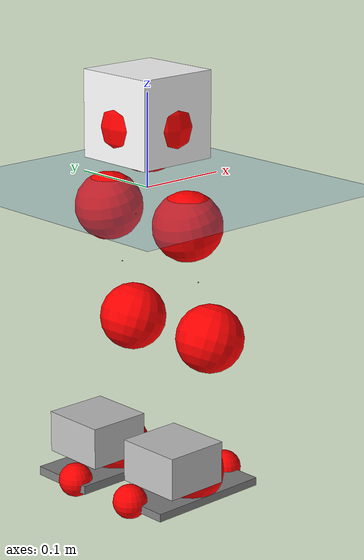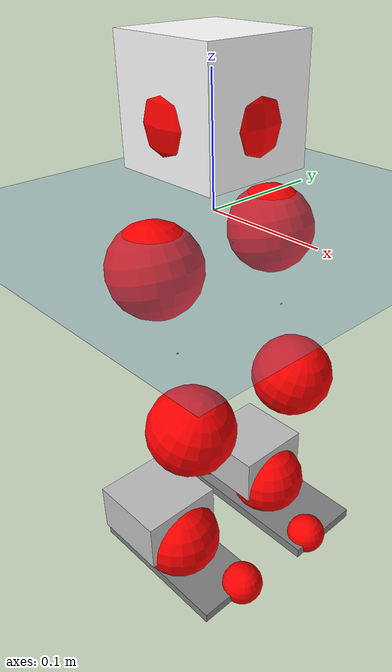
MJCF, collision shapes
<mujoco model="pi_12dof_release_v1">
  <compiler angle="radian" assetdir="assets" balanceinertia="true" inertiafromgeom="false"/>

  <option timestep="0.005" density="1.2" viscosity="2e-05"/>

  <size nkey="1"/>

  <visual>
    <quality shadowsize="8192"/>
    <map shadowclip="0.5"/>
  </visual>

  <default>
    <default class="/">
      <joint armature="0.01" damping="0.01" frictionloss="0.01"/>
      <geom contype="0" conaffinity="0" group="1" solref="-1000 -80"/>
      <site size="0.01 0.005 0.005" group="5"/>
      <general forcelimited="true" biastype="affine" gainprm="20" biasprm="0 -20 -0.5"/>
      <default class="foot">
        <geom size="0.0845 0.036 0.005" type="box" condim="6" group="4" priority="1" friction="0.9 0.2 0.2" solimp="0.015 1 0.005"/>
      </default>
      <default class="reward_collision_sphere">
        <geom group="5" rgba="1 0 0 1"/>
      </default>
    </default>
  </default>

  <asset>
    <texture type="skybox" colorspace="auto" name="//unnamed_texture_0" builtin="gradient" rgb1="0.95 0.95 0.95" rgb2="0.95 0.95 0.95" width="100" height="600"/>
    <texture type="2d" colorspace="auto" name="texplane" builtin="checker" rgb1="0.345 0.575 0.748" rgb2="0.345 0.575 0.748" markrgb="1 1 1" width="512" height="512"/>
    <material name="MatPlane" class="/" texture="texplane" texuniform="true" texrepeat="2 2" specular="0.9"/>
    <mesh name="baselink_1" class="/" file="baselink_1.STL"/>
    <mesh name="r_hip_pitch_link" class="/" file="r_hip_pitch_link.STL"/>
    <mesh name="r_hip_roll_link" class="/" file="r_hip_roll_link.STL"/>
    <mesh name="r_thigh_link" class="/" file="r_thigh_link.STL"/>
    <mesh name="r_calf_link" class="/" file="r_calf_link.STL"/>
    <mesh name="r_ankle_pitch_link" class="/" file="r_ankle_pitch_link.STL"/>
    <mesh name="r_ankle_roll_link" class="/" file="r_ankle_roll_link.STL"/>
    <mesh name="l_hip_pitch_link" class="/" file="l_hip_pitch_link.STL"/>
    <mesh name="l_hip_roll_link" class="/" file="l_hip_roll_link.STL"/>
    <mesh name="l_thigh_link" class="/" file="l_thigh_link.STL"/>
    <mesh name="l_calf_link" class="/" file="l_calf_link.STL"/>
    <mesh name="l_ankle_pitch_link" class="/" file="l_ankle_pitch_link.STL"/>
    <mesh name="l_ankle_roll_link" class="/" file="l_ankle_roll_link.STL"/>
  </asset>

  <worldbody>
    <geom name="floor" class="/" size="100 100 0.125" type="plane" group="0" material="MatPlane"/>
    <light name="toplight_shadow" class="/" pos="0 0 5" dir="0.0990148 0.0990148 -0.990148" type="directional" ambient="0.04 0.04 0.04" diffuse="0.55 0.55 0.55" specular="0.12 0.12 0.12"/>
    <light name="toplight_fill" class="/" pos="0 0 5" dir="0.0990148 0.0990148 -0.990148" type="directional" castshadow="false" ambient="0.04 0.04 0.04" diffuse="0.3 0.3 0.3" specular="0.08 0.08 0.08"/>
    <body name="trunk" pos="0.000221062 0.000527224 0.000953816" quat="1 0.000179152 -0.000191127 -0.000149421">
      <inertial pos="0.00330681 -0.00155792 0.0391326" quat="0.696676 0.00939266 0.00941521 0.717263" mass="1.66215" diaginertia="0.0114197 0.00236817 0.00349304"/>
      <joint name="//unnamed_joint_0" type="free"/>
      <geom name="//unnamed_geom_1" class="/" type="mesh" density="0" rgba="1 1 1 1" mesh="baselink_1"/>
      <geom name="//unnamed_geom_2" class="/" size="0.0459094 0.0459094 0.0459094" pos="0 0 0.0769148" type="box" rgba="1 1 1 1"/>
      <geom name="//unnamed_geom_3" class="reward_collision_sphere" size="0.0505004" pos="0 0 0.0673004"/>
      <site name="imu" class="/" pos="-0.00431436 -0.00919217 0.0037926" size="0.00918189"/>
      <camera name="track" class="/" pos="0 -1.53128 0" quat="0.707107 0.707107 0 0" mode="trackcom"/>
      <camera name="ego_camera" class="/" pos="0.0770617 0 0.173058" quat="-0.5 -0.5 0.5 0.5"/>
      <body name="r_hip_pitch_link" pos="0.000246344 -0.017376 -0.0312864" quat="0.992171 0.000205195 -0.124882 0.000736374">
        <inertial pos="0.00197436 -0.0429933 -7.85998e-05" quat="-0.0194454 0.706295 -0.0284081 0.70708" mass="0.290766" diaginertia="0.000126268 2.62574e-05 6.84984e-05"/>
        <joint name="r_hip_pitch_joint" class="/" pos="0 0 0" axis="-0.00101291 -0.99999 -0.0043556" range="-1.75607 1.25781" armature="0.00959568" damping="0.0146376" frictionloss="0.00904272"/>
        <geom name="//unnamed_geom_4" class="/" type="mesh" density="0" rgba="0.75294 0.75294 0.75294 1" mesh="r_hip_pitch_link"/>
        <geom name="//unnamed_geom_5" class="/" size="0.000459094 0.000459094 0.000459094" type="box" rgba="0.75294 0.75294 0.75294 1"/>
        <body name="r_hip_roll_link" pos="0.000637831 -0.0424942 0.000307764" quat="1 -0.000105256 2.00962e-05 3.08103e-05">
          <inertial pos="-0.0014083 -0.00150436 -0.0610077" quat="0.704827 -0.0788277 -0.0818868 0.700214" mass="0.298483" diaginertia="0.000384111 7.3834e-05 0.000105749"/>
          <joint name="r_hip_roll_joint" class="/" pos="0 0 0" axis="-1 -0.000254484 -0.000399977" range="-0.110865 0.519075" armature="0.0088316" damping="0.00789961" frictionloss="0.0094532"/>
          <geom name="//unnamed_geom_6" class="/" type="mesh" density="0" rgba="0.75294 0.75294 0.75294 1" mesh="r_hip_roll_link"/>
          <geom name="//unnamed_geom_7" class="/" size="0.000459094 0.000459094 0.000459094" type="box" rgba="0.75294 0.75294 0.75294 1"/>
          <geom name="//unnamed_geom_8" class="reward_collision_sphere" size="0.0367275"/>
          <body name="r_thigh_link" pos="0.00170249 0.00232516 -0.0663682" quat="1 8.70308e-05 6.25108e-05 -0.000154124">
            <inertial pos="0.00044841 0.00160547 -0.0462667" quat="0.737128 0.675753 0.000230965 0.000495891" mass="0.0882626" diaginertia="0.000142095 2.48093e-05 4.73656e-05"/>
            <joint name="r_thigh_joint" class="/" pos="0 0 0" axis="-2.33907e-05 0.000506145 -1" range="-0.308786 0.579115" armature="0.00937139" damping="0.000709909" frictionloss="0.00832759"/>
            <geom name="//unnamed_geom_9" class="/" type="mesh" density="0" rgba="0.75294 0.75294 0.75294 1" mesh="r_thigh_link"/>
            <geom name="//unnamed_geom_10" class="/" size="0.000459094 0.000459094 0.000459094" type="box" rgba="0.75294 0.75294 0.75294 1"/>
            <body name="r_calf_link" pos="-0.00112432 -0.00228003 -0.0662147" quat="0.947644 1.77481e-06 0.319328 -7.82899e-05">
              <inertial pos="0.00023023 -7.45281e-05 -0.0670523" quat="0.999954 -0.00281048 -0.00518422 0.00761652" mass="0.641214" diaginertia="0.0041501 0.000925884 0.000146593"/>
              <joint name="r_calf_joint" class="/" pos="0 0 0" axis="-3.32504e-05 -0.999998 0.00204853" range="-1.62849 0.645212" armature="0.00911115" damping="0.0110509" frictionloss="0.00931272"/>
              <geom name="//unnamed_geom_11" class="/" type="mesh" density="0" rgba="0.75294 0.75294 0.75294 1" mesh="r_calf_link"/>
              <geom name="//unnamed_geom_12" class="/" size="0.000459094 0.000459094 0.000459094" type="box" rgba="0.75294 0.75294 0.75294 1"/>
              <geom name="//unnamed_geom_13" class="reward_collision_sphere" size="0.0367275"/>
              <body name="r_ankle_pitch_link" pos="9.65916e-05 0.000129088 -0.134647" quat="0.980026 -0.000126726 -0.198871 0.000173285">
                <inertial pos="0.00478945 0.00283214 -0.00172689" quat="0.0116028 0.707435 -0.00391241 0.706672" mass="0.137611" diaginertia="0.000362372 5.93591e-05 0.00010014"/>
                <joint name="r_ankle_pitch_joint" class="/" pos="0 0 0" axis="0.00450694 -0.999988 -0.002131" range="-1.29779 0.534723" armature="0.00911808" damping="0.00904011" frictionloss="0.00953827"/>
                <geom name="//unnamed_geom_14" class="/" type="mesh" density="0" rgba="0.75294 0.75294 0.75294 1" mesh="r_ankle_pitch_link"/>
                <geom name="//unnamed_geom_15" class="/" size="0.0358094 0.0367275 0.0229547" type="box" rgba="0.75294 0.75294 0.75294 1"/>
                <body name="r_ankle_roll_link" pos="0.0783042 0.0023641 7.22608e-05" quat="1 0.000116867 -1.61305e-05 3.1167e-05">
                  <inertial pos="-0.0244601 -0.000183785 -0.0121243" quat="0.557196 0.432834 0.432519 0.561351" mass="0.391169" diaginertia="0.00125022 0.000270713 0.000224084"/>
                  <joint name="r_ankle_roll_joint" class="/" pos="0 0 0" axis="-0.999978 -0.00661131 0.000920547" stiffness="0.000597862" range="-0.162448 0.135912" armature="0.00855898" damping="0.00814988" frictionloss="0.00958098"/>
                  <geom name="//unnamed_geom_16" class="/" type="mesh" density="0" rgba="0.75294 0.75294 0.75294 1" mesh="r_ankle_roll_link"/>
                  <geom name="//unnamed_geom_17" class="/" type="mesh" rgba="0.75294 0.75294 0.75294 1" mesh="r_ankle_roll_link"/>
                  <geom name="right_foot" class="foot" size="0.0708237 0.0313029 0.00437167" pos="-0.0524019 0 -0.0423031"/>
                  <geom name="//unnamed_geom_19" class="reward_collision_sphere" size="0.0367275" pos="-0.0513745 0 -0.0192287"/>
                  <geom name="//unnamed_geom_20" class="reward_collision_sphere" size="0.0183638" pos="0.0154123 0.0153128 -0.0384574"/>
                  <geom name="//unnamed_geom_21" class="reward_collision_sphere" size="0.0183638" pos="-0.123299 0.0153128 -0.0384574"/>
                  <site name="right_foot" class="foot" pos="-0.0524019 0 -0.0423031" size="0.00918189"/>
                </body>
              </body>
            </body>
          </body>
        </body>
      </body>
      <body name="l_hip_pitch_link" pos="0.000412609 0.0186662 -0.0326239" quat="0.9922 -5.41288e-05 -0.124658 6.92732e-05">
        <inertial pos="0.00102902 0.040667 -0.00115659" quat="-0.0388429 0.707381 0.0301743 0.705119" mass="0.303903" diaginertia="0.000147423 2.76329e-05 8.24079e-05"/>
        <joint name="l_hip_pitch_joint" class="/" pos="0 0 0" axis="-0.00357997 0.999985 -0.00416939" range="-1.24735 1.75596" armature="0.00919114" damping="0.0146309" frictionloss="0.00894517"/>
        <geom name="//unnamed_geom_22" class="/" type="mesh" density="0" rgba="0.75294 0.75294 0.75294 1" mesh="l_hip_pitch_link"/>
        <geom name="//unnamed_geom_23" class="/" size="0.000459094 0.000459094 0.000459094" type="box" rgba="0.75294 0.75294 0.75294 1"/>
        <body name="l_hip_roll_link" pos="0.000883353 0.0429657 0.000303189" quat="1 -3.54814e-05 0.000114503 -0.000317693">
          <inertial pos="-0.00193622 0.000151183 -0.0607359" quat="0.697862 -0.0759308 -0.082565 0.707394" mass="0.295753" diaginertia="0.000370871 7.18956e-05 0.000102891"/>
          <joint name="l_hip_roll_joint" class="/" pos="0 0 0" axis="-1 -1.07497e-06 -4.56492e-06" range="-0.528388 0.120174" armature="0.0095249" damping="0" frictionloss="0.00920048"/>
          <geom name="//unnamed_geom_24" class="/" type="mesh" density="0" rgba="0.75294 0.75294 0.75294 1" mesh="l_hip_roll_link"/>
          <geom name="//unnamed_geom_25" class="/" size="0.000459094 0.000459094 0.000459094" type="box" rgba="0.75294 0.75294 0.75294 1"/>
          <geom name="//unnamed_geom_26" class="reward_collision_sphere" size="0.0367275"/>
          <body name="l_thigh_link" pos="0.000443342 -0.00159546 -0.0667862" quat="1 -4.85216e-05 8.04947e-05 7.05523e-05">
            <inertial pos="-0.000405882 -0.000834347 -0.0462923" quat="0.675817 0.737068 -0.000355606 -0.00140722" mass="0.0874852" diaginertia="0.000143517 2.46858e-05 4.8103e-05"/>
            <joint name="l_thigh_joint" class="/" pos="0 0 0" axis="-0.000315098 -0.00101633 -0.999999" range="-0.599252 0.31538" armature="0.00907193" damping="0.00409663" frictionloss="0.00894757"/>
            <geom name="//unnamed_geom_27" class="/" type="mesh" density="0" rgba="0.75294 0.75294 0.75294 1" mesh="l_thigh_link"/>
            <geom name="//unnamed_geom_28" class="/" size="0.000459094 0.000459094 0.000459094" type="box" rgba="0.75294 0.75294 0.75294 1"/>
            <body name="l_calf_link" pos="-0.000708343 0.000390755 -0.0682106" quat="0.947608 0.00010787 0.319436 0.000205659">
              <inertial pos="0.000388096 0.00293586 -0.0675958" quat="0.999985 0.00298024 -0.000393506 0.00458473" mass="0.609454" diaginertia="0.0039263 0.000897895 0.000140632"/>
              <joint name="l_calf_joint" class="/" pos="0 0 0" axis="-0.00161363 0.999998 0.00108026" stiffness="0.000302268" range="-0.615331 1.67473" armature="0.00913873" damping="0.00699878" frictionloss="0.0088816"/>
              <geom name="//unnamed_geom_29" class="/" type="mesh" density="0" rgba="0.75294 0.75294 0.75294 1" mesh="l_calf_link"/>
              <geom name="//unnamed_geom_30" class="/" size="0.000459094 0.000459094 0.000459094" type="box" rgba="0.75294 0.75294 0.75294 1"/>
              <geom name="//unnamed_geom_31" class="reward_collision_sphere" size="0.0367275"/>
              <body name="l_ankle_pitch_link" pos="-0.000357813 0.000666963 -0.13372" quat="0.980088 -1.97508e-05 -0.198565 2.80535e-05">
                <inertial pos="0.00564953 -0.001091 8.34029e-05" quat="-0.00175782 0.707012 0.00193204 0.707196" mass="0.134709" diaginertia="0.000346074 5.77695e-05 9.83121e-05"/>
                <joint name="l_ankle_pitch_joint" class="/" pos="0 0 0" axis="0.000146368 1 0.00022759" range="-0.529256 1.29328" armature="0.0090596" damping="0.0034149" frictionloss="0.00924325"/>
                <geom name="//unnamed_geom_32" class="/" type="mesh" density="0" rgba="0.75294 0.75294 0.75294 1" mesh="l_ankle_pitch_link"/>
                <geom name="//unnamed_geom_33" class="/" size="0.0358094 0.0367275 0.0229547" type="box" rgba="0.75294 0.75294 0.75294 1"/>
                <body name="l_ankle_roll_link" pos="0.0784919 0.000266774 -0.000501634" quat="1 -7.66047e-05 -2.98198e-05 -1.63848e-05">
                  <inertial pos="-0.0253894 -0.000120404 -0.0141698" quat="0.559184 0.430867 0.43635 0.557912" mass="0.403723" diaginertia="0.00129992 0.00027202 0.000233949"/>
                  <joint name="l_ankle_roll_joint" class="/" pos="0 0 0" axis="-0.999999 -5.23447e-05 -0.00102021" range="-0.161687 0.151707" armature="0.00913745" damping="0.00932162" frictionloss="0.00920839"/>
                  <geom name="//unnamed_geom_34" class="/" type="mesh" density="0" rgba="0.75294 0.75294 0.75294 1" mesh="l_ankle_roll_link"/>
                  <geom name="//unnamed_geom_35" class="/" type="mesh" rgba="0.75294 0.75294 0.75294 1" mesh="l_ankle_roll_link"/>
                  <geom name="left_foot" class="foot" size="0.077658 0.0375688 0.00482429" pos="-0.0524019 0 -0.0423031"/>
                  <geom name="//unnamed_geom_37" class="reward_collision_sphere" size="0.0367275" pos="-0.0513745 0 -0.0192287"/>
                  <geom name="//unnamed_geom_38" class="reward_collision_sphere" size="0.0183638" pos="0.0154123 -0.0153128 -0.0384574"/>
                  <geom name="//unnamed_geom_39" class="reward_collision_sphere" size="0.0183638" pos="-0.123299 -0.0153128 -0.0384574"/>
                  <site name="left_foot" class="foot" pos="-0.0524019 0 -0.0423031" size="0.00918189"/>
                </body>
              </body>
            </body>
          </body>
        </body>
      </body>
    </body>
  </worldbody>

  <contact>
    <pair class="/" geom1="floor" geom2="right_foot" name="//unnamed_contact_1"/>
    <pair class="/" geom1="floor" geom2="left_foot" name="//unnamed_contact_0"/>
  </contact>

  <actuator>
    <general name="r_hip_pitch_joint" class="/" joint="r_hip_pitch_joint" forcerange="-19.2811 19.2811" gainprm="18.4654" biasprm="0 -18.4654 -0.467739"/>
    <general name="r_hip_roll_joint" class="/" joint="r_hip_roll_joint" forcerange="-18.6558 18.6558" gainprm="18.4654" biasprm="0 -18.4654 -0.467739"/>
    <general name="r_thigh_joint" class="/" joint="r_thigh_joint" forcerange="-18.6447 18.6447" gainprm="18.4654" biasprm="0 -18.4654 -0.467739"/>
    <general name="r_calf_joint" class="/" joint="r_calf_joint" forcerange="-19.7051 19.7051" gainprm="18.4654" biasprm="0 -18.4654 -0.467739"/>
    <general name="r_ankle_pitch_joint" class="/" joint="r_ankle_pitch_joint" forcerange="-18.7062 18.7062" gainprm="18.4654" biasprm="0 -18.4654 -0.467739"/>
    <general name="r_ankle_roll_joint" class="/" joint="r_ankle_roll_joint" forcerange="-18.6126 18.6126" gainprm="18.4654" biasprm="0 -18.4654 -0.467739"/>
    <general name="l_hip_pitch_joint" class="/" joint="l_hip_pitch_joint" forcerange="-19.5361 19.5361" gainprm="18.4654" biasprm="0 -18.4654 -0.467739"/>
    <general name="l_hip_roll_joint" class="/" joint="l_hip_roll_joint" forcerange="-19.7534 19.7534" gainprm="18.4654" biasprm="0 -18.4654 -0.467739"/>
    <general name="l_thigh_joint" class="/" joint="l_thigh_joint" forcerange="-18.4748 18.4748" gainprm="18.4654" biasprm="0 -18.4654 -0.467739"/>
    <general name="l_calf_joint" class="/" joint="l_calf_joint" forcerange="-19.5278 19.5278" gainprm="18.4654" biasprm="0 -18.4654 -0.467739"/>
    <general name="l_ankle_pitch_joint" class="/" joint="l_ankle_pitch_joint" forcerange="-18.7484 18.7484" gainprm="18.4654" biasprm="0 -18.4654 -0.467739"/>
    <general name="l_ankle_roll_joint" class="/" joint="l_ankle_roll_joint" forcerange="-20.669 20.669" gainprm="18.4654" biasprm="0 -18.4654 -0.467739"/>
  </actuator>

  <sensor>
    <gyro site="imu" name="imu_angular_velocity"/>
    <velocimeter site="imu" name="imu_linear_velocity"/>
    <framelinvel objtype="site" objname="left_foot" name="left_foot_global_linear_velocity"/>
    <framelinvel objtype="site" objname="right_foot" name="right_foot_global_linear_velocity"/>
  </sensor>

  <keyframe>
    <key name="home" qpos="0 0 0.291 1 0 0 0 0.4 0 0 -0.8 0.4 0 -0.4 0 0 0.8 -0.4 0"/>
  </keyframe>
</mujoco>
